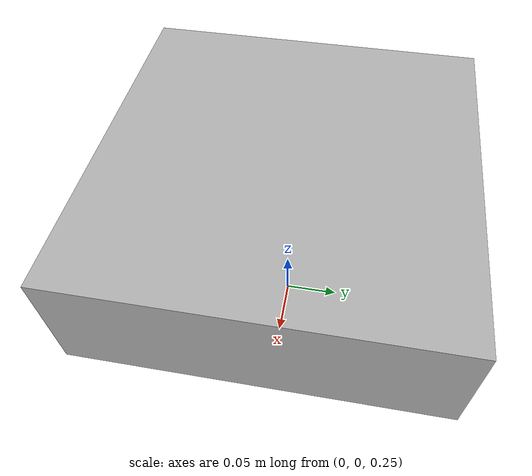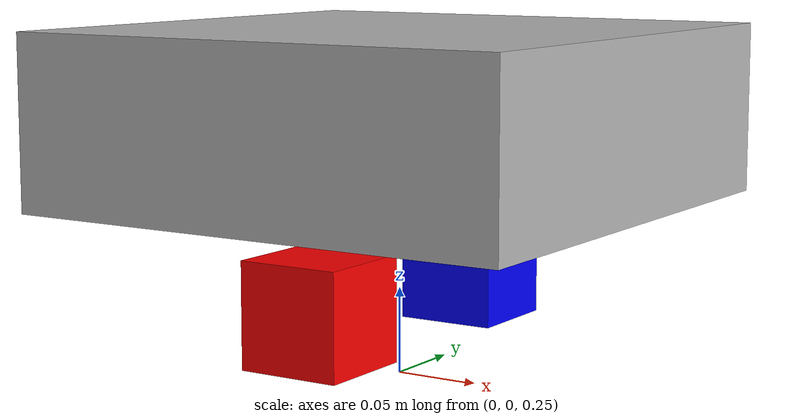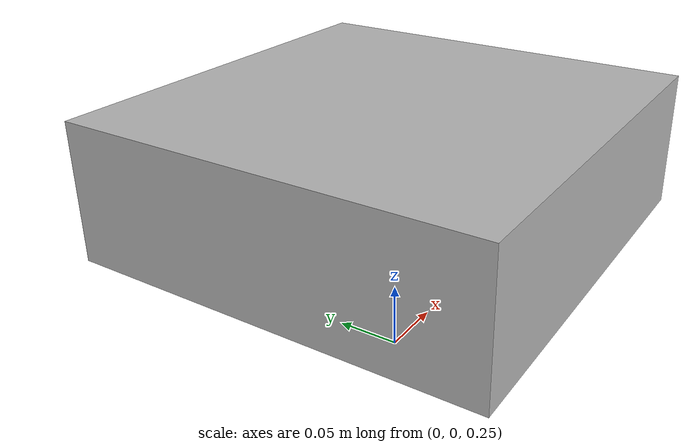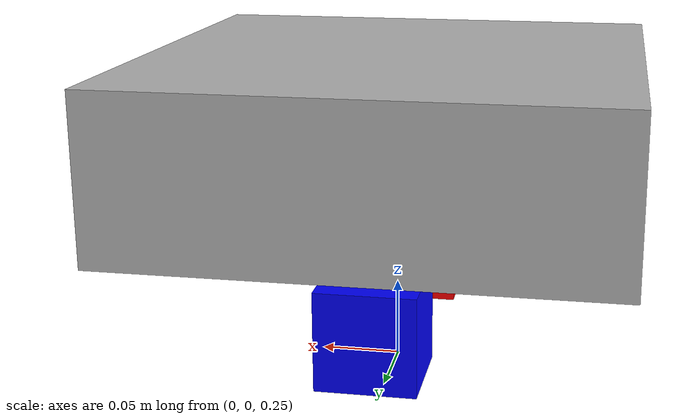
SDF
<?xml version="1.0"?>
<sdf version="1.6">
  <model name="payload_test">
    <link name="base_link">
      <pose>0 0 0.4 0 0 0</pose>
      <inertial><mass>10</mass><inertia><ixx>1</ixx><iyy>1</iyy><izz>1</izz></inertia></inertial>
      <collision name="collision"><geometry><box><size>0.3 0.3 0.1</size></box></geometry></collision>
      <visual name="visual"><geometry><box><size>0.3 0.3 0.1</size></box></geometry></visual>
    </link>
    <joint name="world_anchor" type="fixed"><parent>world</parent><child>base_link</child></joint>
    <link name="fire_payload_link">
      <pose>0 -0.08 0.3 0 0 0</pose><gravity>false</gravity>
      <inertial><mass>0.05</mass><inertia><ixx>0.00003</ixx><iyy>0.00003</iyy><izz>0.00003</izz></inertia></inertial>
      <collision name="collision"><geometry><box><size>0.06 0.06 0.06</size></box></geometry></collision>
      <visual name="visual"><geometry><box><size>0.06 0.06 0.06</size></box></geometry><material><ambient>1 0 0 1</ambient></material></visual>
    </link>
    <joint name="fire_payload_joint" type="fixed"><parent>base_link</parent><child>fire_payload_link</child></joint>
    <link name="rescue_payload_link">
      <pose>0 0.08 0.3 0 0 0</pose><gravity>false</gravity>
      <inertial><mass>0.05</mass><inertia><ixx>0.00003</ixx><iyy>0.00003</iyy><izz>0.00003</izz></inertia></inertial>
      <collision name="collision"><geometry><box><size>0.06 0.06 0.06</size></box></geometry></collision>
      <visual name="visual"><geometry><box><size>0.06 0.06 0.06</size></box></geometry><material><ambient>0 0 1 1</ambient></material></visual>
    </link>
    <joint name="rescue_payload_joint" type="fixed"><parent>base_link</parent><child>rescue_payload_link</child></joint>
    <link name="fire_door_link"><pose>0 -0.08 0.25 0 0 0</pose><inertial><mass>0.01</mass><inertia><ixx>0.000002</ixx><iyy>0.000002</iyy><izz>0.000002</izz></inertia></inertial></link>
    <joint name="fire_door_joint" type="revolute"><parent>base_link</parent><child>fire_door_link</child><axis><xyz>1 0 0</xyz><limit><lower>0</lower><upper>1.2</upper></limit></axis></joint>
    <link name="rescue_door_link"><pose>0 0.08 0.25 0 0 0</pose><inertial><mass>0.01</mass><inertia><ixx>0.000002</ixx><iyy>0.000002</iyy><izz>0.000002</izz></inertia></inertial></link>
    <joint name="rescue_door_joint" type="revolute"><parent>base_link</parent><child>rescue_door_link</child><axis><xyz>1 0 0</xyz><limit><lower>-1.2</lower><upper>0</upper></limit></axis></joint>
    <plugin name="fire_payload_plugin" filename="libfire_payload_plugin.so"/>
  </model>
</sdf>
